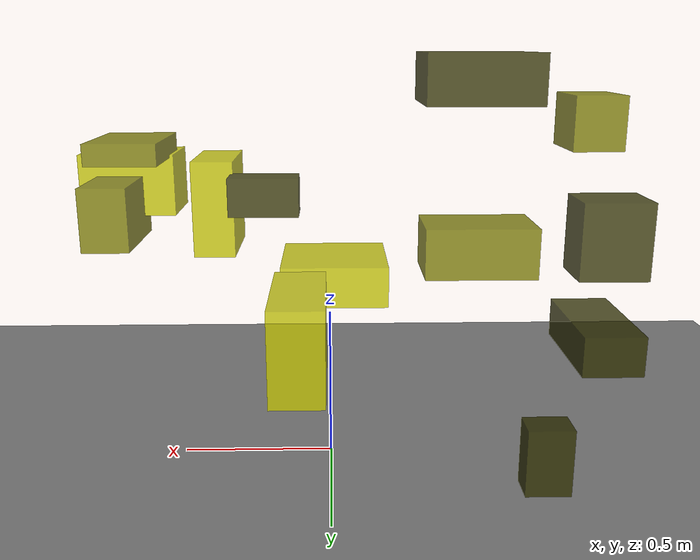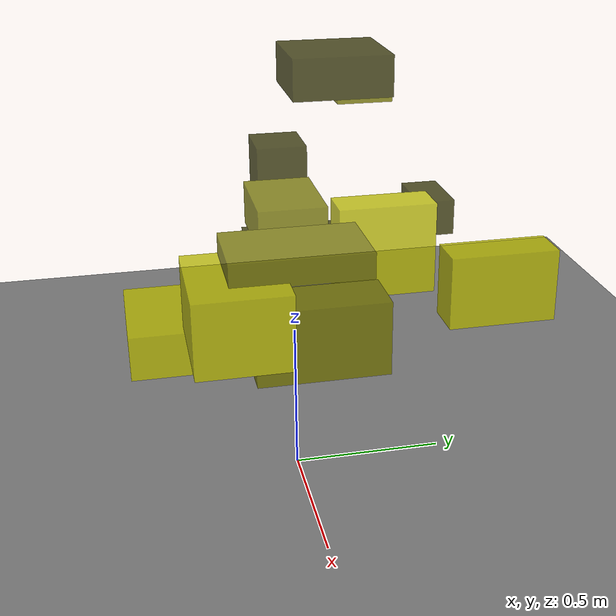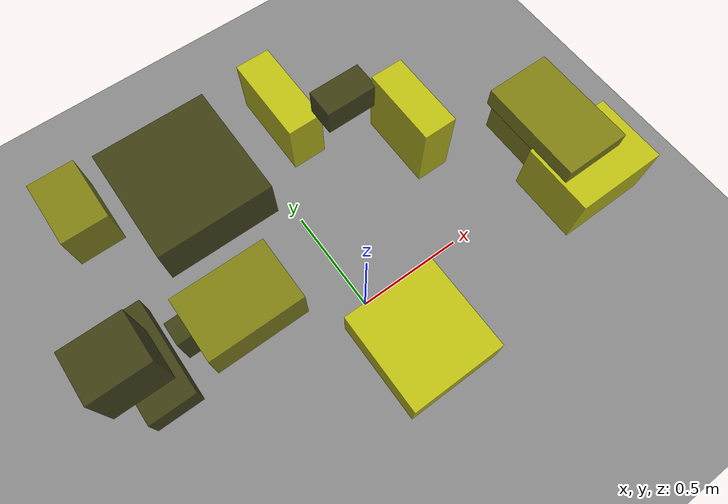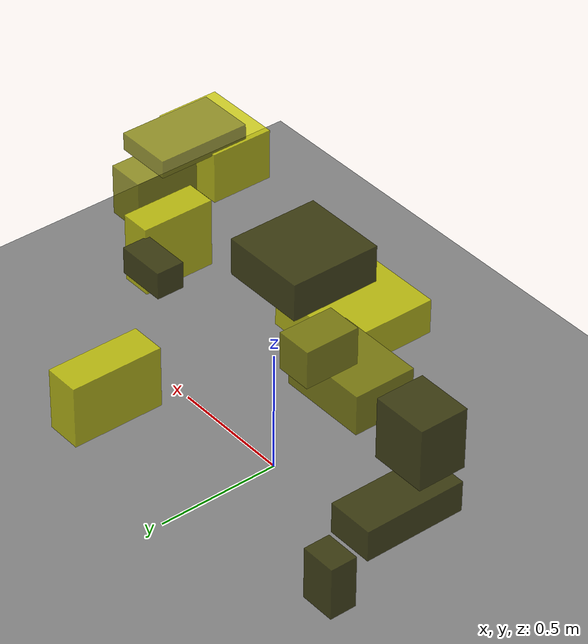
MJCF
<?xml version="1.0"?>
<mujoco model="obstacle_scene">
  <compiler angle="radian" coordinate="local"/>
  <option timestep="0.001" gravity="0 0 -9.81"/>

  <asset>
    <material name="obstacle_mat" rgba="0.8 0.8 0.0 0.8"/>
    <material name="ground_mat" rgba="0.5 0.5 0.5 1"/>
  </asset>

  <worldbody>
    <!-- Ground plane -->
    <geom name="ground" type="plane" size="3 3 0.1" material="ground_mat"/>

    <!-- Obstacles -->
    <body name="obstacle_0" pos="0.177992 0.380718 0.957637">
      <geom name="obs_0" type="box" size="0.095658 0.053454 0.052460" rgba="0.2 0.2 0.0 0.8"/>
    </body>
    <body name="obstacle_1" pos="0.644246 -0.112695 1.028319">
      <geom name="obs_1" type="box" size="0.113302 0.183289 0.034730" rgba="0.5 0.5 0.0 0.8"/>
    </body>
    <body name="obstacle_2" pos="0.677604 -0.271202 0.901556">
      <geom name="obs_2" type="box" size="0.158021 0.124561 0.101471" rgba="0.8 0.8 0.0 0.8"/>
    </body>
    <body name="obstacle_3" pos="-0.674226 0.299748 0.114375">
      <geom name="obs_3" type="box" size="0.072804 0.054787 0.110577" rgba="0.2 0.2 0.0 0.8"/>
    </body>
    <body name="obstacle_4" pos="-0.704568 0.389453 1.158021">
      <geom name="obs_4" type="box" size="0.067828 0.103284 0.071925" rgba="0.5 0.5 0.0 0.8"/>
    </body>
    <body name="obstacle_5" pos="-0.015018 -0.342681 0.539868">
      <geom name="obs_5" type="box" size="0.188763 0.197448 0.071678" rgba="0.8 0.8 0.0 0.8"/>
    </body>
    <body name="obstacle_6" pos="-0.424705 0.223517 1.265075">
      <geom name="obs_6" type="box" size="0.161128 0.170019 0.070336" rgba="0.2 0.2 0.0 0.8"/>
    </body>
    <body name="obstacle_7" pos="0.698364 -0.062564 0.831795">
      <geom name="obs_7" type="box" size="0.074870 0.173457 0.101074" rgba="0.5 0.5 0.0 0.8"/>
    </body>
    <body name="obstacle_8" pos="0.325467 0.204078 0.908782">
      <geom name="obs_8" type="box" size="0.058364 0.141222 0.134648" rgba="0.8 0.8 0.0 0.8"/>
    </body>
    <body name="obstacle_9" pos="-0.841585 0.157627 0.464688">
      <geom name="obs_9" type="box" size="0.093153 0.203843 0.062439" rgba="0.2 0.2 0.0 0.8"/>
    </body>
    <body name="obstacle_10" pos="-0.470760 0.053413 0.733824">
      <geom name="obs_10" type="box" size="0.176093 0.122634 0.079772" rgba="0.5 0.5 0.0 0.8"/>
    </body>
    <body name="obstacle_11" pos="0.078552 0.663348 0.643899">
      <geom name="obs_11" type="box" size="0.069233 0.180499 0.122687" rgba="0.8 0.8 0.0 0.8"/>
    </body>
    <body name="obstacle_12" pos="-0.878743 0.098400 0.773241">
      <geom name="obs_12" type="box" size="0.110412 0.096151 0.123008" rgba="0.2 0.2 0.0 0.8"/>
    </body>
  </worldbody>
</mujoco>
